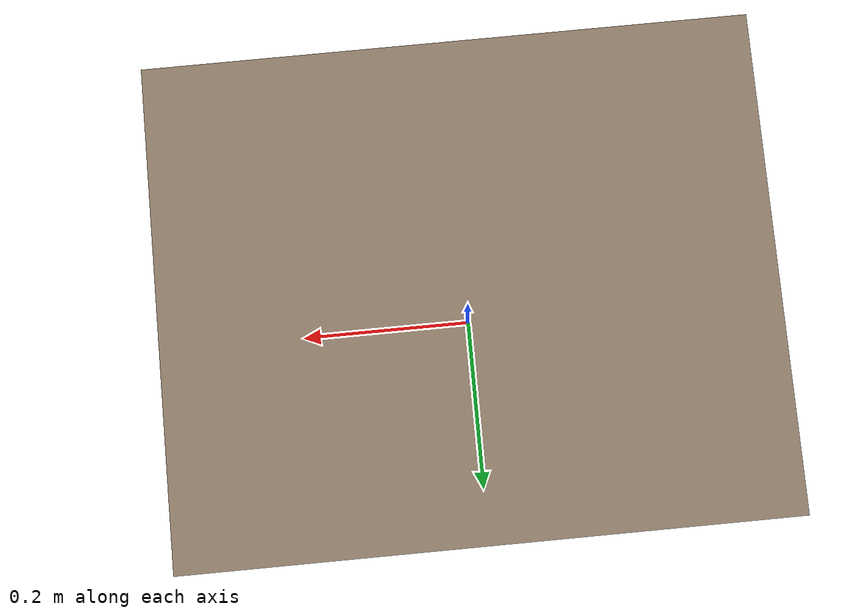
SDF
<?xml version="1.0"?>
<sdf version="1.6">
  <model name="BedsideTable">
    <static>true</static>
    <link name="link">
      <collision name="col">
        <geometry>
          <box>
            <size>0.55 0.45 0.65</size>
          </box>
        </geometry>
      </collision>
      <visual name="vis">
        <geometry>
          <box>
            <size>0.55 0.45 0.65</size>
          </box>
        </geometry>
        <material>
          <ambient>0.55 0.48 0.4 1</ambient>
          <diffuse>0.55 0.48 0.4 1</diffuse>
        </material>
      </visual>
    </link>
  </model>
</sdf>
